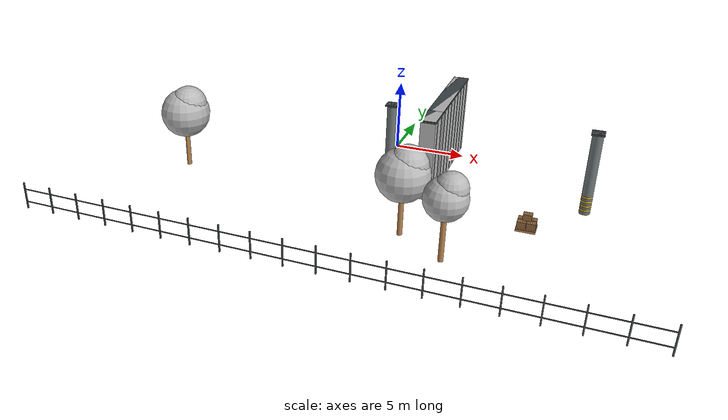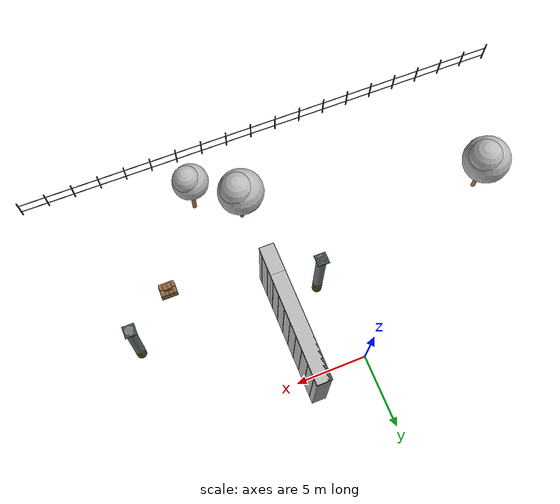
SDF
<sdf version="1.5">
 <world name="default">
  <include><uri>model://sun</uri></include>
  <model name="obstacle_wall_1">
   <static>true</static>
   <pose>4.085 -2.2155 0.003 0 0 0</pose>
   <link name="structure">
    <visual name="collision_wall">
     <pose>0 0 2.75 0 0 0</pose>
     <geometry><box><size>1 7.569 5.5</size></box></geometry>
     <material>
      <script>
       <uri>file:///home/fxxk/px4_agent/scene/materials/scripts</uri>
       <uri>file:///home/fxxk/px4_agent/scene/materials/textures</uri>
       <name>Yard/concrete</name>
      </script>
     </material>
    </visual>
    <collision name="collision_wall_collision">
     <pose>0 0 2.75 0 0 0</pose>
     <geometry><box><size>1 7.569 5.5</size></box></geometry>
     <surface><friction><ode><mu>1.0</mu><mu2>1.0</mu2></ode></friction></surface>
    </collision>
    <visual name="wall_coping">
     <pose>0 0 5.435 0 0 0</pose>
     <geometry><box><size>1.06 7.6257675 0.13</size></box></geometry>
     <material>
      <ambient>0.24 0.27 0.28 1</ambient>
      <diffuse>0.24 0.27 0.28 1</diffuse>
      <specular>0.04 0.04 0.04 1</specular>
     </material>
    </visual>
    <visual name="panel_joint_-1_0">
     <pose>-0.513 -3.3114375 2.75 0 0 0</pose>
     <geometry><box><size>0.028 0.03216825 5.3</size></box></geometry>
     <material>
      <ambient>0.26 0.29 0.29 1</ambient>
      <diffuse>0.26 0.29 0.29 1</diffuse>
      <specular>0.04 0.04 0.04 1</specular>
     </material>
    </visual>
    <visual name="panel_joint_1_0">
     <pose>0.513 -3.3114375 2.75 0 0 0</pose>
     <geometry><box><size>0.028 0.03216825 5.3</size></box></geometry>
     <material>
      <ambient>0.26 0.29 0.29 1</ambient>
      <diffuse>0.26 0.29 0.29 1</diffuse>
      <specular>0.04 0.04 0.04 1</specular>
     </material>
    </visual>
    <visual name="panel_joint_-1_1">
     <pose>-0.513 -2.3653125 2.75 0 0 0</pose>
     <geometry><box><size>0.028 0.03216825 5.3</size></box></geometry>
     <material>
      <ambient>0.26 0.29 0.29 1</ambient>
      <diffuse>0.26 0.29 0.29 1</diffuse>
      <specular>0.04 0.04 0.04 1</specular>
     </material>
    </visual>
    <visual name="panel_joint_1_1">
     <pose>0.513 -2.3653125 2.75 0 0 0</pose>
     <geometry><box><size>0.028 0.03216825 5.3</size></box></geometry>
     <material>
      <ambient>0.26 0.29 0.29 1</ambient>
      <diffuse>0.26 0.29 0.29 1</diffuse>
      <specular>0.04 0.04 0.04 1</specular>
     </material>
    </visual>
    <visual name="panel_joint_-1_2">
     <pose>-0.513 -1.4191875 2.75 0 0 0</pose>
     <geometry><box><size>0.028 0.03216825 5.3</size></box></geometry>
     <material>
      <ambient>0.26 0.29 0.29 1</ambient>
      <diffuse>0.26 0.29 0.29 1</diffuse>
      <specular>0.04 0.04 0.04 1</specular>
     </material>
    </visual>
    <visual name="panel_joint_1_2">
     <pose>0.513 -1.4191875 2.75 0 0 0</pose>
     <geometry><box><size>0.028 0.03216825 5.3</size></box></geometry>
     <material>
      <ambient>0.26 0.29 0.29 1</ambient>
      <diffuse>0.26 0.29 0.29 1</diffuse>
      <specular>0.04 0.04 0.04 1</specular>
     </material>
    </visual>
    <visual name="panel_joint_-1_3">
     <pose>-0.513 -0.4730625 2.75 0 0 0</pose>
     <geometry><box><size>0.028 0.03216825 5.3</size></box></geometry>
     <material>
      <ambient>0.26 0.29 0.29 1</ambient>
      <diffuse>0.26 0.29 0.29 1</diffuse>
      <specular>0.04 0.04 0.04 1</specular>
     </material>
    </visual>
    <visual name="panel_joint_1_3">
     <pose>0.513 -0.4730625 2.75 0 0 0</pose>
     <geometry><box><size>0.028 0.03216825 5.3</size></box></geometry>
     <material>
      <ambient>0.26 0.29 0.29 1</ambient>
      <diffuse>0.26 0.29 0.29 1</diffuse>
      <specular>0.04 0.04 0.04 1</specular>
     </material>
    </visual>
    <visual name="panel_joint_-1_4">
     <pose>-0.513 0.4730625 2.75 0 0 0</pose>
     <geometry><box><size>0.028 0.03216825 5.3</size></box></geometry>
     <material>
      <ambient>0.26 0.29 0.29 1</ambient>
      <diffuse>0.26 0.29 0.29 1</diffuse>
      <specular>0.04 0.04 0.04 1</specular>
     </material>
    </visual>
    <visual name="panel_joint_1_4">
     <pose>0.513 0.4730625 2.75 0 0 0</pose>
     <geometry><box><size>0.028 0.03216825 5.3</size></box></geometry>
     <material>
      <ambient>0.26 0.29 0.29 1</ambient>
      <diffuse>0.26 0.29 0.29 1</diffuse>
      <specular>0.04 0.04 0.04 1</specular>
     </material>
    </visual>
    <visual name="panel_joint_-1_5">
     <pose>-0.513 1.4191875 2.75 0 0 0</pose>
     <geometry><box><size>0.028 0.03216825 5.3</size></box></geometry>
     <material>
      <ambient>0.26 0.29 0.29 1</ambient>
      <diffuse>0.26 0.29 0.29 1</diffuse>
      <specular>0.04 0.04 0.04 1</specular>
     </material>
    </visual>
    <visual name="panel_joint_1_5">
     <pose>0.513 1.4191875 2.75 0 0 0</pose>
     <geometry><box><size>0.028 0.03216825 5.3</size></box></geometry>
     <material>
      <ambient>0.26 0.29 0.29 1</ambient>
      <diffuse>0.26 0.29 0.29 1</diffuse>
      <specular>0.04 0.04 0.04 1</specular>
     </material>
    </visual>
    <visual name="panel_joint_-1_6">
     <pose>-0.513 2.3653125 2.75 0 0 0</pose>
     <geometry><box><size>0.028 0.03216825 5.3</size></box></geometry>
     <material>
      <ambient>0.26 0.29 0.29 1</ambient>
      <diffuse>0.26 0.29 0.29 1</diffuse>
      <specular>0.04 0.04 0.04 1</specular>
     </material>
    </visual>
    <visual name="panel_joint_1_6">
     <pose>0.513 2.3653125 2.75 0 0 0</pose>
     <geometry><box><size>0.028 0.03216825 5.3</size></box></geometry>
     <material>
      <ambient>0.26 0.29 0.29 1</ambient>
      <diffuse>0.26 0.29 0.29 1</diffuse>
      <specular>0.04 0.04 0.04 1</specular>
     </material>
    </visual>
    <visual name="panel_joint_-1_7">
     <pose>-0.513 3.3114375 2.75 0 0 0</pose>
     <geometry><box><size>0.028 0.03216825 5.3</size></box></geometry>
     <material>
      <ambient>0.26 0.29 0.29 1</ambient>
      <diffuse>0.26 0.29 0.29 1</diffuse>
      <specular>0.04 0.04 0.04 1</specular>
     </material>
    </visual>
    <visual name="panel_joint_1_7">
     <pose>0.513 3.3114375 2.75 0 0 0</pose>
     <geometry><box><size>0.028 0.03216825 5.3</size></box></geometry>
     <material>
      <ambient>0.26 0.29 0.29 1</ambient>
      <diffuse>0.26 0.29 0.29 1</diffuse>
      <specular>0.04 0.04 0.04 1</specular>
     </material>
    </visual>
    <visual name="safety_band_0">
     <pose>-0.517 -3.54796875 0.65 0 0 0</pose>
     <geometry><box><size>0.025 0.3216825 0.28</size></box></geometry>
     <material>
      <ambient>0.075 0.085 0.085 1</ambient>
      <diffuse>0.075 0.085 0.085 1</diffuse>
      <specular>0.04 0.04 0.04 1</specular>
     </material>
    </visual>
    <visual name="safety_band_1">
     <pose>-0.517 -3.07490625 0.65 0 0 0</pose>
     <geometry><box><size>0.025 0.3216825 0.28</size></box></geometry>
     <material>
      <ambient>0.78 0.64 0.1 1</ambient>
      <diffuse>0.78 0.64 0.1 1</diffuse>
      <specular>0.04 0.04 0.04 1</specular>
     </material>
    </visual>
    <visual name="safety_band_2">
     <pose>-0.517 -2.60184375 0.65 0 0 0</pose>
     <geometry><box><size>0.025 0.3216825 0.28</size></box></geometry>
     <material>
      <ambient>0.075 0.085 0.085 1</ambient>
      <diffuse>0.075 0.085 0.085 1</diffuse>
      <specular>0.04 0.04 0.04 1</specular>
     </material>
    </visual>
    <visual name="safety_band_3">
     <pose>-0.517 -2.12878125 0.65 0 0 0</pose>
     <geometry><box><size>0.025 0.3216825 0.28</size></box></geometry>
     <material>
      <ambient>0.78 0.64 0.1 1</ambient>
      <diffuse>0.78 0.64 0.1 1</diffuse>
      <specular>0.04 0.04 0.04 1</specular>
     </material>
    </visual>
    <visual name="safety_band_4">
     <pose>-0.517 -1.65571875 0.65 0 0 0</pose>
     <geometry><box><size>0.025 0.3216825 0.28</size></box></geometry>
     <material>
      <ambient>0.075 0.085 0.085 1</ambient>
      <diffuse>0.075 0.085 0.085 1</diffuse>
      <specular>0.04 0.04 0.04 1</specular>
     </material>
    </visual>
    <visual name="safety_band_5">
     <pose>-0.517 -1.18265625 0.65 0 0 0</pose>
     <geometry><box><size>0.025 0.3216825 0.28</size></box></geometry>
     <material>
      <ambient>0.78 0.64 0.1 1</ambient>
      <diffuse>0.78 0.64 0.1 1</diffuse>
      <specular>0.04 0.04 0.04 1</specular>
     </material>
    </visual>
    <visual name="safety_band_6">
     <pose>-0.517 -0.70959375 0.65 0 0 0</pose>
     <geometry><box><size>0.025 0.3216825 0.28</size></box></geometry>
     <material>
      <ambient>0.075 0.085 0.085 1</ambient>
      <diffuse>0.075 0.085 0.085 1</diffuse>
      <specular>0.04 0.04 0.04 1</specular>
     </material>
    </visual>
    <visual name="safety_band_7">
     <pose>-0.517 -0.23653125 0.65 0 0 0</pose>
     <geometry><box><size>0.025 0.3216825 0.28</size></box></geometry>
     <material>
      <ambient>0.78 0.64 0.1 1</ambient>
      <diffuse>0.78 0.64 0.1 1</diffuse>
      <specular>0.04 0.04 0.04 1</specular>
     </material>
    </visual>
    <visual name="safety_band_8">
     <pose>-0.517 0.23653125 0.65 0 0 0</pose>
     <geometry><box><size>0.025 0.3216825 0.28</size></box></geometry>
     <material>
      <ambient>0.075 0.085 0.085 1</ambient>
      <diffuse>0.075 0.085 0.085 1</diffuse>
      <specular>0.04 0.04 0.04 1</specular>
     </material>
    </visual>
    <visual name="safety_band_9">
     <pose>-0.517 0.70959375 0.65 0 0 0</pose>
     <geometry><box><size>0.025 0.3216825 0.28</size></box></geometry>
     <material>
      <ambient>0.78 0.64 0.1 1</ambient>
      <diffuse>0.78 0.64 0.1 1</diffuse>
      <specular>0.04 0.04 0.04 1</specular>
     </material>
    </visual>
    <visual name="safety_band_10">
     <pose>-0.517 1.18265625 0.65 0 0 0</pose>
     <geometry><box><size>0.025 0.3216825 0.28</size></box></geometry>
     <material>
      <ambient>0.075 0.085 0.085 1</ambient>
      <diffuse>0.075 0.085 0.085 1</diffuse>
      <specular>0.04 0.04 0.04 1</specular>
     </material>
    </visual>
    <visual name="safety_band_11">
     <pose>-0.517 1.65571875 0.65 0 0 0</pose>
     <geometry><box><size>0.025 0.3216825 0.28</size></box></geometry>
     <material>
      <ambient>0.78 0.64 0.1 1</ambient>
      <diffuse>0.78 0.64 0.1 1</diffuse>
      <specular>0.04 0.04 0.04 1</specular>
     </material>
    </visual>
    <visual name="safety_band_12">
     <pose>-0.517 2.12878125 0.65 0 0 0</pose>
     <geometry><box><size>0.025 0.3216825 0.28</size></box></geometry>
     <material>
      <ambient>0.075 0.085 0.085 1</ambient>
      <diffuse>0.075 0.085 0.085 1</diffuse>
      <specular>0.04 0.04 0.04 1</specular>
     </material>
    </visual>
    <visual name="safety_band_13">
     <pose>-0.517 2.60184375 0.65 0 0 0</pose>
     <geometry><box><size>0.025 0.3216825 0.28</size></box></geometry>
     <material>
      <ambient>0.78 0.64 0.1 1</ambient>
      <diffuse>0.78 0.64 0.1 1</diffuse>
      <specular>0.04 0.04 0.04 1</specular>
     </material>
    </visual>
    <visual name="safety_band_14">
     <pose>-0.517 3.07490625 0.65 0 0 0</pose>
     <geometry><box><size>0.025 0.3216825 0.28</size></box></geometry>
     <material>
      <ambient>0.075 0.085 0.085 1</ambient>
      <diffuse>0.075 0.085 0.085 1</diffuse>
      <specular>0.04 0.04 0.04 1</specular>
     </material>
    </visual>
    <visual name="safety_band_15">
     <pose>-0.517 3.54796875 0.65 0 0 0</pose>
     <geometry><box><size>0.025 0.3216825 0.28</size></box></geometry>
     <material>
      <ambient>0.78 0.64 0.1 1</ambient>
      <diffuse>0.78 0.64 0.1 1</diffuse>
      <specular>0.04 0.04 0.04 1</specular>
     </material>
    </visual>
   </link>
  </model>
  <model name="south_boundary_cargo_stack">
   <static>true</static>
   <pose>4.085 -7 0.003 0 0 0</pose>
   <link name="structure">
    <visual name="collision_wall">
     <pose>0 0 2.75 0 0 0</pose>
     <geometry><box><size>1 2 5.5</size></box></geometry>
     <material>
      <script>
       <uri>file:///home/fxxk/px4_agent/scene/materials/scripts</uri>
       <uri>file:///home/fxxk/px4_agent/scene/materials/textures</uri>
       <name>Yard/concrete</name>
      </script>
     </material>
    </visual>
    <collision name="collision_wall_collision">
     <pose>0 0 2.75 0 0 0</pose>
     <geometry><box><size>1 2 5.5</size></box></geometry>
     <surface><friction><ode><mu>1.0</mu><mu2>1.0</mu2></ode></friction></surface>
    </collision>
    <visual name="wall_coping">
     <pose>0 0 5.435 0 0 0</pose>
     <geometry><box><size>1.06 2.06 0.13</size></box></geometry>
     <material>
      <ambient>0.24 0.27 0.28 1</ambient>
      <diffuse>0.24 0.27 0.28 1</diffuse>
      <specular>0.04 0.04 0.04 1</specular>
     </material>
    </visual>
    <visual name="panel_joint_-1_0">
     <pose>-0.513 -0.5 2.75 0 0 0</pose>
     <geometry><box><size>0.028 0.034 5.3</size></box></geometry>
     <material>
      <ambient>0.26 0.29 0.29 1</ambient>
      <diffuse>0.26 0.29 0.29 1</diffuse>
      <specular>0.04 0.04 0.04 1</specular>
     </material>
    </visual>
    <visual name="panel_joint_1_0">
     <pose>0.513 -0.5 2.75 0 0 0</pose>
     <geometry><box><size>0.028 0.034 5.3</size></box></geometry>
     <material>
      <ambient>0.26 0.29 0.29 1</ambient>
      <diffuse>0.26 0.29 0.29 1</diffuse>
      <specular>0.04 0.04 0.04 1</specular>
     </material>
    </visual>
    <visual name="panel_joint_-1_1">
     <pose>-0.513 0.5 2.75 0 0 0</pose>
     <geometry><box><size>0.028 0.034 5.3</size></box></geometry>
     <material>
      <ambient>0.26 0.29 0.29 1</ambient>
      <diffuse>0.26 0.29 0.29 1</diffuse>
      <specular>0.04 0.04 0.04 1</specular>
     </material>
    </visual>
    <visual name="panel_joint_1_1">
     <pose>0.513 0.5 2.75 0 0 0</pose>
     <geometry><box><size>0.028 0.034 5.3</size></box></geometry>
     <material>
      <ambient>0.26 0.29 0.29 1</ambient>
      <diffuse>0.26 0.29 0.29 1</diffuse>
      <specular>0.04 0.04 0.04 1</specular>
     </material>
    </visual>
    <visual name="safety_band_0">
     <pose>-0.517 -0.75 0.65 0 0 0</pose>
     <geometry><box><size>0.025 0.34 0.28</size></box></geometry>
     <material>
      <ambient>0.075 0.085 0.085 1</ambient>
      <diffuse>0.075 0.085 0.085 1</diffuse>
      <specular>0.04 0.04 0.04 1</specular>
     </material>
    </visual>
    <visual name="safety_band_1">
     <pose>-0.517 -0.25 0.65 0 0 0</pose>
     <geometry><box><size>0.025 0.34 0.28</size></box></geometry>
     <material>
      <ambient>0.78 0.64 0.1 1</ambient>
      <diffuse>0.78 0.64 0.1 1</diffuse>
      <specular>0.04 0.04 0.04 1</specular>
     </material>
    </visual>
    <visual name="safety_band_2">
     <pose>-0.517 0.25 0.65 0 0 0</pose>
     <geometry><box><size>0.025 0.34 0.28</size></box></geometry>
     <material>
      <ambient>0.075 0.085 0.085 1</ambient>
      <diffuse>0.075 0.085 0.085 1</diffuse>
      <specular>0.04 0.04 0.04 1</specular>
     </material>
    </visual>
    <visual name="safety_band_3">
     <pose>-0.517 0.75 0.65 0 0 0</pose>
     <geometry><box><size>0.025 0.34 0.28</size></box></geometry>
     <material>
      <ambient>0.78 0.64 0.1 1</ambient>
      <diffuse>0.78 0.64 0.1 1</diffuse>
      <specular>0.04 0.04 0.04 1</specular>
     </material>
    </visual>
   </link>
  </model>
  <model name="utility_pillar_southwest">
   <static>true</static>
   <pose>1.106 -5.817 0.003 0 0 0</pose>
   <link name="structure">
    <visual name="tall_pillar">
     <pose>0 0 2.75 0 0 0</pose>
     <geometry><cylinder><radius>0.34</radius><length>5.5</length></cylinder></geometry>
     <material>
      <ambient>0.43 0.46 0.46 1</ambient>
      <diffuse>0.43 0.46 0.46 1</diffuse>
      <specular>0.04 0.04 0.04 1</specular>
     </material>
    </visual>
    <collision name="tall_pillar_collision">
     <pose>0 0 2.75 0 0 0</pose>
     <geometry><cylinder><radius>0.34</radius><length>5.5</length></cylinder></geometry>
     <surface><friction><ode><mu>1.0</mu><mu2>1.0</mu2></ode></friction></surface>
    </collision>
    <visual name="top_cap">
     <pose>0 0 5.45 0 0 0</pose>
     <geometry><box><size>0.8 0.8 0.1</size></box></geometry>
     <material>
      <ambient>0.25 0.28 0.28 1</ambient>
      <diffuse>0.25 0.28 0.28 1</diffuse>
      <specular>0.04 0.04 0.04 1</specular>
     </material>
    </visual>
    <visual name="hazard_ring_0">
     <pose>0 0 0.3 0 0 0</pose>
     <geometry><cylinder><radius>0.345</radius><length>0.14</length></cylinder></geometry>
     <material>
      <ambient>0.8 0.66 0.14 1</ambient>
      <diffuse>0.8 0.66 0.14 1</diffuse>
      <specular>0.04 0.04 0.04 1</specular>
     </material>
    </visual>
    <visual name="hazard_ring_1">
     <pose>0 0 0.6 0 0 0</pose>
     <geometry><cylinder><radius>0.345</radius><length>0.14</length></cylinder></geometry>
     <material>
      <ambient>0.8 0.66 0.14 1</ambient>
      <diffuse>0.8 0.66 0.14 1</diffuse>
      <specular>0.04 0.04 0.04 1</specular>
     </material>
    </visual>
    <visual name="hazard_ring_2">
     <pose>0 0 0.9 0 0 0</pose>
     <geometry><cylinder><radius>0.345</radius><length>0.14</length></cylinder></geometry>
     <material>
      <ambient>0.8 0.66 0.14 1</ambient>
      <diffuse>0.8 0.66 0.14 1</diffuse>
      <specular>0.04 0.04 0.04 1</specular>
     </material>
    </visual>
    <visual name="hazard_ring_3">
     <pose>0 0 1.2 0 0 0</pose>
     <geometry><cylinder><radius>0.345</radius><length>0.14</length></cylinder></geometry>
     <material>
      <ambient>0.8 0.66 0.14 1</ambient>
      <diffuse>0.8 0.66 0.14 1</diffuse>
      <specular>0.04 0.04 0.04 1</specular>
     </material>
    </visual>
   </link>
  </model>
  <model name="utility_pillar_southeast">
   <static>true</static>
   <pose>14.059 -5.822 0.003 0 0 0</pose>
   <link name="structure">
    <visual name="tall_pillar">
     <pose>0 0 2.75 0 0 0</pose>
     <geometry><cylinder><radius>0.34</radius><length>5.5</length></cylinder></geometry>
     <material>
      <ambient>0.43 0.46 0.46 1</ambient>
      <diffuse>0.43 0.46 0.46 1</diffuse>
      <specular>0.04 0.04 0.04 1</specular>
     </material>
    </visual>
    <collision name="tall_pillar_collision">
     <pose>0 0 2.75 0 0 0</pose>
     <geometry><cylinder><radius>0.34</radius><length>5.5</length></cylinder></geometry>
     <surface><friction><ode><mu>1.0</mu><mu2>1.0</mu2></ode></friction></surface>
    </collision>
    <visual name="top_cap">
     <pose>0 0 5.45 0 0 0</pose>
     <geometry><box><size>0.8 0.8 0.1</size></box></geometry>
     <material>
      <ambient>0.25 0.28 0.28 1</ambient>
      <diffuse>0.25 0.28 0.28 1</diffuse>
      <specular>0.04 0.04 0.04 1</specular>
     </material>
    </visual>
    <visual name="hazard_ring_0">
     <pose>0 0 0.3 0 0 0</pose>
     <geometry><cylinder><radius>0.345</radius><length>0.14</length></cylinder></geometry>
     <material>
      <ambient>0.8 0.66 0.14 1</ambient>
      <diffuse>0.8 0.66 0.14 1</diffuse>
      <specular>0.04 0.04 0.04 1</specular>
     </material>
    </visual>
    <visual name="hazard_ring_1">
     <pose>0 0 0.6 0 0 0</pose>
     <geometry><cylinder><radius>0.345</radius><length>0.14</length></cylinder></geometry>
     <material>
      <ambient>0.8 0.66 0.14 1</ambient>
      <diffuse>0.8 0.66 0.14 1</diffuse>
      <specular>0.04 0.04 0.04 1</specular>
     </material>
    </visual>
    <visual name="hazard_ring_2">
     <pose>0 0 0.9 0 0 0</pose>
     <geometry><cylinder><radius>0.345</radius><length>0.14</length></cylinder></geometry>
     <material>
      <ambient>0.8 0.66 0.14 1</ambient>
      <diffuse>0.8 0.66 0.14 1</diffuse>
      <specular>0.04 0.04 0.04 1</specular>
     </material>
    </visual>
    <visual name="hazard_ring_3">
     <pose>0 0 1.2 0 0 0</pose>
     <geometry><cylinder><radius>0.345</radius><length>0.14</length></cylinder></geometry>
     <material>
      <ambient>0.8 0.66 0.14 1</ambient>
      <diffuse>0.8 0.66 0.14 1</diffuse>
      <specular>0.04 0.04 0.04 1</specular>
     </material>
    </visual>
   </link>
  </model>
  <model name="cartons_pallet_1">
   <static>true</static>
   <pose>10.95 -9.4 0.003 0 0 0</pose>
   <link name="structure">
    <visual name="pallet_collision_base">
     <pose>0 0 0.075 0 0 0</pose>
     <geometry><box><size>1.2 1 0.15</size></box></geometry>
     <material>
      <script>
       <uri>file:///home/fxxk/px4_agent/scene/materials/scripts</uri>
       <uri>file:///home/fxxk/px4_agent/scene/materials/textures</uri>
       <name>Yard/wood</name>
      </script>
     </material>
    </visual>
    <collision name="pallet_collision_base_collision">
     <pose>0 0 0.075 0 0 0</pose>
     <geometry><box><size>1.2 1 0.15</size></box></geometry>
     <surface><friction><ode><mu>1.0</mu><mu2>1.0</mu2></ode></friction></surface>
    </collision>
    <visual name="pallet_slat_0">
     <pose>0 -0.43 0.168 0 0 0</pose>
     <geometry><box><size>1.2 0.13 0.035</size></box></geometry>
     <material>
      <script>
       <uri>file:///home/fxxk/px4_agent/scene/materials/scripts</uri>
       <uri>file:///home/fxxk/px4_agent/scene/materials/textures</uri>
       <name>Yard/wood</name>
      </script>
     </material>
    </visual>
    <visual name="pallet_slat_1">
     <pose>0 -0.215 0.168 0 0 0</pose>
     <geometry><box><size>1.2 0.13 0.035</size></box></geometry>
     <material>
      <script>
       <uri>file:///home/fxxk/px4_agent/scene/materials/scripts</uri>
       <uri>file:///home/fxxk/px4_agent/scene/materials/textures</uri>
       <name>Yard/wood</name>
      </script>
     </material>
    </visual>
    <visual name="pallet_slat_2">
     <pose>0 0 0.168 0 0 0</pose>
     <geometry><box><size>1.2 0.13 0.035</size></box></geometry>
     <material>
      <script>
       <uri>file:///home/fxxk/px4_agent/scene/materials/scripts</uri>
       <uri>file:///home/fxxk/px4_agent/scene/materials/textures</uri>
       <name>Yard/wood</name>
      </script>
     </material>
    </visual>
    <visual name="pallet_slat_3">
     <pose>0 0.215 0.168 0 0 0</pose>
     <geometry><box><size>1.2 0.13 0.035</size></box></geometry>
     <material>
      <script>
       <uri>file:///home/fxxk/px4_agent/scene/materials/scripts</uri>
       <uri>file:///home/fxxk/px4_agent/scene/materials/textures</uri>
       <name>Yard/wood</name>
      </script>
     </material>
    </visual>
    <visual name="pallet_slat_4">
     <pose>0 0.43 0.168 0 0 0</pose>
     <geometry><box><size>1.2 0.13 0.035</size></box></geometry>
     <material>
      <script>
       <uri>file:///home/fxxk/px4_agent/scene/materials/scripts</uri>
       <uri>file:///home/fxxk/px4_agent/scene/materials/textures</uri>
       <name>Yard/wood</name>
      </script>
     </material>
    </visual>
    <visual name="carton_0">
     <pose>-0.29 -0.24 0.43 0 0 0</pose>
     <geometry><box><size>0.54 0.44 0.4</size></box></geometry>
     <material>
      <ambient>0.56 0.4 0.23 1</ambient>
      <diffuse>0.56 0.4 0.23 1</diffuse>
      <specular>0.04 0.04 0.04 1</specular>
     </material>
    </visual>
    <collision name="carton_0_collision">
     <pose>-0.29 -0.24 0.43 0 0 0</pose>
     <geometry><box><size>0.54 0.44 0.4</size></box></geometry>
     <surface><friction><ode><mu>1.0</mu><mu2>1.0</mu2></ode></friction></surface>
    </collision>
    <visual name="packing_tape_0">
     <pose>-0.29 -0.24 0.635 0 0 0</pose>
     <geometry><box><size>0.075 0.442 0.008</size></box></geometry>
     <material>
      <ambient>0.72 0.58 0.36 1</ambient>
      <diffuse>0.72 0.58 0.36 1</diffuse>
      <specular>0.04 0.04 0.04 1</specular>
     </material>
    </visual>
    <visual name="carton_1">
     <pose>0.29 -0.24 0.43 0 0 0</pose>
     <geometry><box><size>0.54 0.44 0.4</size></box></geometry>
     <material>
      <ambient>0.56 0.4 0.23 1</ambient>
      <diffuse>0.56 0.4 0.23 1</diffuse>
      <specular>0.04 0.04 0.04 1</specular>
     </material>
    </visual>
    <collision name="carton_1_collision">
     <pose>0.29 -0.24 0.43 0 0 0</pose>
     <geometry><box><size>0.54 0.44 0.4</size></box></geometry>
     <surface><friction><ode><mu>1.0</mu><mu2>1.0</mu2></ode></friction></surface>
    </collision>
    <visual name="packing_tape_1">
     <pose>0.29 -0.24 0.635 0 0 0</pose>
     <geometry><box><size>0.075 0.442 0.008</size></box></geometry>
     <material>
      <ambient>0.72 0.58 0.36 1</ambient>
      <diffuse>0.72 0.58 0.36 1</diffuse>
      <specular>0.04 0.04 0.04 1</specular>
     </material>
    </visual>
    <visual name="carton_2">
     <pose>-0.29 0.24 0.43 0 0 0</pose>
     <geometry><box><size>0.54 0.44 0.4</size></box></geometry>
     <material>
      <ambient>0.56 0.4 0.23 1</ambient>
      <diffuse>0.56 0.4 0.23 1</diffuse>
      <specular>0.04 0.04 0.04 1</specular>
     </material>
    </visual>
    <collision name="carton_2_collision">
     <pose>-0.29 0.24 0.43 0 0 0</pose>
     <geometry><box><size>0.54 0.44 0.4</size></box></geometry>
     <surface><friction><ode><mu>1.0</mu><mu2>1.0</mu2></ode></friction></surface>
    </collision>
    <visual name="packing_tape_2">
     <pose>-0.29 0.24 0.635 0 0 0</pose>
     <geometry><box><size>0.075 0.442 0.008</size></box></geometry>
     <material>
      <ambient>0.72 0.58 0.36 1</ambient>
      <diffuse>0.72 0.58 0.36 1</diffuse>
      <specular>0.04 0.04 0.04 1</specular>
     </material>
    </visual>
    <visual name="carton_3">
     <pose>0.29 0.24 0.43 0 0 0</pose>
     <geometry><box><size>0.54 0.44 0.4</size></box></geometry>
     <material>
      <ambient>0.56 0.4 0.23 1</ambient>
      <diffuse>0.56 0.4 0.23 1</diffuse>
      <specular>0.04 0.04 0.04 1</specular>
     </material>
    </visual>
    <collision name="carton_3_collision">
     <pose>0.29 0.24 0.43 0 0 0</pose>
     <geometry><box><size>0.54 0.44 0.4</size></box></geometry>
     <surface><friction><ode><mu>1.0</mu><mu2>1.0</mu2></ode></friction></surface>
    </collision>
    <visual name="packing_tape_3">
     <pose>0.29 0.24 0.635 0 0 0</pose>
     <geometry><box><size>0.075 0.442 0.008</size></box></geometry>
     <material>
      <ambient>0.72 0.58 0.36 1</ambient>
      <diffuse>0.72 0.58 0.36 1</diffuse>
      <specular>0.04 0.04 0.04 1</specular>
     </material>
    </visual>
    <visual name="carton_4">
     <pose>0 0 0.87 0 0 0</pose>
     <geometry><box><size>0.54 0.44 0.4</size></box></geometry>
     <material>
      <ambient>0.56 0.4 0.23 1</ambient>
      <diffuse>0.56 0.4 0.23 1</diffuse>
      <specular>0.04 0.04 0.04 1</specular>
     </material>
    </visual>
    <collision name="carton_4_collision">
     <pose>0 0 0.87 0 0 0</pose>
     <geometry><box><size>0.54 0.44 0.4</size></box></geometry>
     <surface><friction><ode><mu>1.0</mu><mu2>1.0</mu2></ode></friction></surface>
    </collision>
    <visual name="packing_tape_4">
     <pose>0 0 1.075 0 0 0</pose>
     <geometry><box><size>0.075 0.442 0.008</size></box></geometry>
     <material>
      <ambient>0.72 0.58 0.36 1</ambient>
      <diffuse>0.72 0.58 0.36 1</diffuse>
      <specular>0.04 0.04 0.04 1</specular>
     </material>
    </visual>
   </link>
  </model>
  <model name="yard_tree_1">
   <static>true</static>
   <pose>-13 -9 0.003 0 0 0</pose>
   <link name="structure">
    <visual name="trunk">
     <pose>0 0 1.6 0 0 0</pose>
     <geometry><cylinder><radius>0.16</radius><length>3.2</length></cylinder></geometry>
     <material>
      <script>
       <uri>file:///home/fxxk/px4_agent/scene/materials/scripts</uri>
       <uri>file:///home/fxxk/px4_agent/scene/materials/textures</uri>
       <name>Yard/wood</name>
      </script>
     </material>
    </visual>
    <collision name="trunk_collision">
     <pose>0 0 1.6 0 0 0</pose>
     <geometry><cylinder><radius>0.16</radius><length>3.2</length></cylinder></geometry>
     <surface><friction><ode><mu>1.0</mu><mu2>1.0</mu2></ode></friction></surface>
    </collision>
    <visual name="crown">
     <pose>0 0 3.95 0 0 0</pose>
     <geometry><sphere><radius>1.7</radius></sphere></geometry>
     <material>
      <script>
       <uri>file:///home/fxxk/px4_agent/scene/materials/scripts</uri>
       <uri>file:///home/fxxk/px4_agent/scene/materials/textures</uri>
       <name>Yard/foliage</name>
      </script>
     </material>
    </visual>
    <collision name="crown_collision">
     <pose>0 0 3.95 0 0 0</pose>
     <geometry><sphere><radius>1.7</radius></sphere></geometry>
     <surface><friction><ode><mu>1.0</mu><mu2>1.0</mu2></ode></friction></surface>
    </collision>
    <visual name="crown_top">
     <pose>0.25 0.06 4.6 0 0 0</pose>
     <geometry><sphere><radius>1.275</radius></sphere></geometry>
     <material>
      <script>
       <uri>file:///home/fxxk/px4_agent/scene/materials/scripts</uri>
       <uri>file:///home/fxxk/px4_agent/scene/materials/textures</uri>
       <name>Yard/foliage</name>
      </script>
     </material>
    </visual>
   </link>
  </model>
  <model name="yard_tree_5">
   <static>true</static>
   <pose>4 -13 0.003 0 0 0</pose>
   <link name="structure">
    <visual name="trunk">
     <pose>0 0 1.6 0 0 0</pose>
     <geometry><cylinder><radius>0.16</radius><length>3.2</length></cylinder></geometry>
     <material>
      <script>
       <uri>file:///home/fxxk/px4_agent/scene/materials/scripts</uri>
       <uri>file:///home/fxxk/px4_agent/scene/materials/textures</uri>
       <name>Yard/wood</name>
      </script>
     </material>
    </visual>
    <collision name="trunk_collision">
     <pose>0 0 1.6 0 0 0</pose>
     <geometry><cylinder><radius>0.16</radius><length>3.2</length></cylinder></geometry>
     <surface><friction><ode><mu>1.0</mu><mu2>1.0</mu2></ode></friction></surface>
    </collision>
    <visual name="crown">
     <pose>0 0 3.95 0 0 0</pose>
     <geometry><sphere><radius>1.65</radius></sphere></geometry>
     <material>
      <script>
       <uri>file:///home/fxxk/px4_agent/scene/materials/scripts</uri>
       <uri>file:///home/fxxk/px4_agent/scene/materials/textures</uri>
       <name>Yard/foliage</name>
      </script>
     </material>
    </visual>
    <collision name="crown_collision">
     <pose>0 0 3.95 0 0 0</pose>
     <geometry><sphere><radius>1.65</radius></sphere></geometry>
     <surface><friction><ode><mu>1.0</mu><mu2>1.0</mu2></ode></friction></surface>
    </collision>
    <visual name="crown_top">
     <pose>0.25 0.06 4.6 0 0 0</pose>
     <geometry><sphere><radius>1.2374999999999998</radius></sphere></geometry>
     <material>
      <script>
       <uri>file:///home/fxxk/px4_agent/scene/materials/scripts</uri>
       <uri>file:///home/fxxk/px4_agent/scene/materials/textures</uri>
       <name>Yard/foliage</name>
      </script>
     </material>
    </visual>
   </link>
  </model>
  <model name="yard_tree_7">
   <static>true</static>
   <pose>7 -15 0.003 0 0 0</pose>
   <link name="structure">
    <visual name="trunk">
     <pose>0 0 1.6 0 0 0</pose>
     <geometry><cylinder><radius>0.16</radius><length>3.2</length></cylinder></geometry>
     <material>
      <script>
       <uri>file:///home/fxxk/px4_agent/scene/materials/scripts</uri>
       <uri>file:///home/fxxk/px4_agent/scene/materials/textures</uri>
       <name>Yard/wood</name>
      </script>
     </material>
    </visual>
    <collision name="trunk_collision">
     <pose>0 0 1.6 0 0 0</pose>
     <geometry><cylinder><radius>0.16</radius><length>3.2</length></cylinder></geometry>
     <surface><friction><ode><mu>1.0</mu><mu2>1.0</mu2></ode></friction></surface>
    </collision>
    <visual name="crown">
     <pose>0 0 3.95 0 0 0</pose>
     <geometry><sphere><radius>1.3</radius></sphere></geometry>
     <material>
      <script>
       <uri>file:///home/fxxk/px4_agent/scene/materials/scripts</uri>
       <uri>file:///home/fxxk/px4_agent/scene/materials/textures</uri>
       <name>Yard/foliage</name>
      </script>
     </material>
    </visual>
    <collision name="crown_collision">
     <pose>0 0 3.95 0 0 0</pose>
     <geometry><sphere><radius>1.3</radius></sphere></geometry>
     <surface><friction><ode><mu>1.0</mu><mu2>1.0</mu2></ode></friction></surface>
    </collision>
    <visual name="crown_top">
     <pose>0.25 0.06 4.6 0 0 0</pose>
     <geometry><sphere><radius>0.9750000000000001</radius></sphere></geometry>
     <material>
      <script>
       <uri>file:///home/fxxk/px4_agent/scene/materials/scripts</uri>
       <uri>file:///home/fxxk/px4_agent/scene/materials/textures</uri>
       <name>Yard/foliage</name>
      </script>
     </material>
    </visual>
   </link>
  </model>
  <model name="south_fence">
   <static>true</static>
   <pose>0 -19 0.003 0 0 0</pose>
   <link name="structure">
    <collision name="fence_collision">
     <pose>0 0 .9 0 0 0</pose>
     <geometry><box><size>38 0.12 1.8</size></box></geometry>
    </collision>
    <visual name="fence_post_0">
     <pose>-19 0 0.9 0 0 0</pose>
     <geometry><box><size>0.08 0.08 1.8</size></box></geometry>
     <material>
      <ambient>0.31 0.34 0.33 1</ambient>
      <diffuse>0.31 0.34 0.33 1</diffuse>
      <specular>0.04 0.04 0.04 1</specular>
     </material>
    </visual>
    <visual name="fence_post_1">
     <pose>-17 0 0.9 0 0 0</pose>
     <geometry><box><size>0.08 0.08 1.8</size></box></geometry>
     <material>
      <ambient>0.31 0.34 0.33 1</ambient>
      <diffuse>0.31 0.34 0.33 1</diffuse>
      <specular>0.04 0.04 0.04 1</specular>
     </material>
    </visual>
    <visual name="fence_post_2">
     <pose>-15 0 0.9 0 0 0</pose>
     <geometry><box><size>0.08 0.08 1.8</size></box></geometry>
     <material>
      <ambient>0.31 0.34 0.33 1</ambient>
      <diffuse>0.31 0.34 0.33 1</diffuse>
      <specular>0.04 0.04 0.04 1</specular>
     </material>
    </visual>
    <visual name="fence_post_3">
     <pose>-13 0 0.9 0 0 0</pose>
     <geometry><box><size>0.08 0.08 1.8</size></box></geometry>
     <material>
      <ambient>0.31 0.34 0.33 1</ambient>
      <diffuse>0.31 0.34 0.33 1</diffuse>
      <specular>0.04 0.04 0.04 1</specular>
     </material>
    </visual>
    <visual name="fence_post_4">
     <pose>-11 0 0.9 0 0 0</pose>
     <geometry><box><size>0.08 0.08 1.8</size></box></geometry>
     <material>
      <ambient>0.31 0.34 0.33 1</ambient>
      <diffuse>0.31 0.34 0.33 1</diffuse>
      <specular>0.04 0.04 0.04 1</specular>
     </material>
    </visual>
    <visual name="fence_post_5">
     <pose>-9 0 0.9 0 0 0</pose>
     <geometry><box><size>0.08 0.08 1.8</size></box></geometry>
     <material>
      <ambient>0.31 0.34 0.33 1</ambient>
      <diffuse>0.31 0.34 0.33 1</diffuse>
      <specular>0.04 0.04 0.04 1</specular>
     </material>
    </visual>
    <visual name="fence_post_6">
     <pose>-7 0 0.9 0 0 0</pose>
     <geometry><box><size>0.08 0.08 1.8</size></box></geometry>
     <material>
      <ambient>0.31 0.34 0.33 1</ambient>
      <diffuse>0.31 0.34 0.33 1</diffuse>
      <specular>0.04 0.04 0.04 1</specular>
     </material>
    </visual>
    <visual name="fence_post_7">
     <pose>-5 0 0.9 0 0 0</pose>
     <geometry><box><size>0.08 0.08 1.8</size></box></geometry>
     <material>
      <ambient>0.31 0.34 0.33 1</ambient>
      <diffuse>0.31 0.34 0.33 1</diffuse>
      <specular>0.04 0.04 0.04 1</specular>
     </material>
    </visual>
    <visual name="fence_post_8">
     <pose>-3 0 0.9 0 0 0</pose>
     <geometry><box><size>0.08 0.08 1.8</size></box></geometry>
     <material>
      <ambient>0.31 0.34 0.33 1</ambient>
      <diffuse>0.31 0.34 0.33 1</diffuse>
      <specular>0.04 0.04 0.04 1</specular>
     </material>
    </visual>
    <visual name="fence_post_9">
     <pose>-1 0 0.9 0 0 0</pose>
     <geometry><box><size>0.08 0.08 1.8</size></box></geometry>
     <material>
      <ambient>0.31 0.34 0.33 1</ambient>
      <diffuse>0.31 0.34 0.33 1</diffuse>
      <specular>0.04 0.04 0.04 1</specular>
     </material>
    </visual>
    <visual name="fence_post_10">
     <pose>1 0 0.9 0 0 0</pose>
     <geometry><box><size>0.08 0.08 1.8</size></box></geometry>
     <material>
      <ambient>0.31 0.34 0.33 1</ambient>
      <diffuse>0.31 0.34 0.33 1</diffuse>
      <specular>0.04 0.04 0.04 1</specular>
     </material>
    </visual>
    <visual name="fence_post_11">
     <pose>3 0 0.9 0 0 0</pose>
     <geometry><box><size>0.08 0.08 1.8</size></box></geometry>
     <material>
      <ambient>0.31 0.34 0.33 1</ambient>
      <diffuse>0.31 0.34 0.33 1</diffuse>
      <specular>0.04 0.04 0.04 1</specular>
     </material>
    </visual>
    <visual name="fence_post_12">
     <pose>5 0 0.9 0 0 0</pose>
     <geometry><box><size>0.08 0.08 1.8</size></box></geometry>
     <material>
      <ambient>0.31 0.34 0.33 1</ambient>
      <diffuse>0.31 0.34 0.33 1</diffuse>
      <specular>0.04 0.04 0.04 1</specular>
     </material>
    </visual>
    <visual name="fence_post_13">
     <pose>7 0 0.9 0 0 0</pose>
     <geometry><box><size>0.08 0.08 1.8</size></box></geometry>
     <material>
      <ambient>0.31 0.34 0.33 1</ambient>
      <diffuse>0.31 0.34 0.33 1</diffuse>
      <specular>0.04 0.04 0.04 1</specular>
     </material>
    </visual>
    <visual name="fence_post_14">
     <pose>9 0 0.9 0 0 0</pose>
     <geometry><box><size>0.08 0.08 1.8</size></box></geometry>
     <material>
      <ambient>0.31 0.34 0.33 1</ambient>
      <diffuse>0.31 0.34 0.33 1</diffuse>
      <specular>0.04 0.04 0.04 1</specular>
     </material>
    </visual>
    <visual name="fence_post_15">
     <pose>11 0 0.9 0 0 0</pose>
     <geometry><box><size>0.08 0.08 1.8</size></box></geometry>
     <material>
      <ambient>0.31 0.34 0.33 1</ambient>
      <diffuse>0.31 0.34 0.33 1</diffuse>
      <specular>0.04 0.04 0.04 1</specular>
     </material>
    </visual>
    <visual name="fence_post_16">
     <pose>13 0 0.9 0 0 0</pose>
     <geometry><box><size>0.08 0.08 1.8</size></box></geometry>
     <material>
      <ambient>0.31 0.34 0.33 1</ambient>
      <diffuse>0.31 0.34 0.33 1</diffuse>
      <specular>0.04 0.04 0.04 1</specular>
     </material>
    </visual>
    <visual name="fence_post_17">
     <pose>15 0 0.9 0 0 0</pose>
     <geometry><box><size>0.08 0.08 1.8</size></box></geometry>
     <material>
      <ambient>0.31 0.34 0.33 1</ambient>
      <diffuse>0.31 0.34 0.33 1</diffuse>
      <specular>0.04 0.04 0.04 1</specular>
     </material>
    </visual>
    <visual name="fence_post_18">
     <pose>17 0 0.9 0 0 0</pose>
     <geometry><box><size>0.08 0.08 1.8</size></box></geometry>
     <material>
      <ambient>0.31 0.34 0.33 1</ambient>
      <diffuse>0.31 0.34 0.33 1</diffuse>
      <specular>0.04 0.04 0.04 1</specular>
     </material>
    </visual>
    <visual name="fence_post_19">
     <pose>19 0 0.9 0 0 0</pose>
     <geometry><box><size>0.08 0.08 1.8</size></box></geometry>
     <material>
      <ambient>0.31 0.34 0.33 1</ambient>
      <diffuse>0.31 0.34 0.33 1</diffuse>
      <specular>0.04 0.04 0.04 1</specular>
     </material>
    </visual>
    <visual name="fence_rail_0">
     <pose>0 0 0.48 0 0 0</pose>
     <geometry><box><size>38 0.04 0.055</size></box></geometry>
     <material>
      <ambient>0.35 0.38 0.37 1</ambient>
      <diffuse>0.35 0.38 0.37 1</diffuse>
      <specular>0.04 0.04 0.04 1</specular>
     </material>
    </visual>
    <visual name="fence_rail_1">
     <pose>0 0 1.35 0 0 0</pose>
     <geometry><box><size>38 0.04 0.055</size></box></geometry>
     <material>
      <ambient>0.35 0.38 0.37 1</ambient>
      <diffuse>0.35 0.38 0.37 1</diffuse>
      <specular>0.04 0.04 0.04 1</specular>
     </material>
    </visual>
   </link>
  </model>
 </world>
</sdf>
